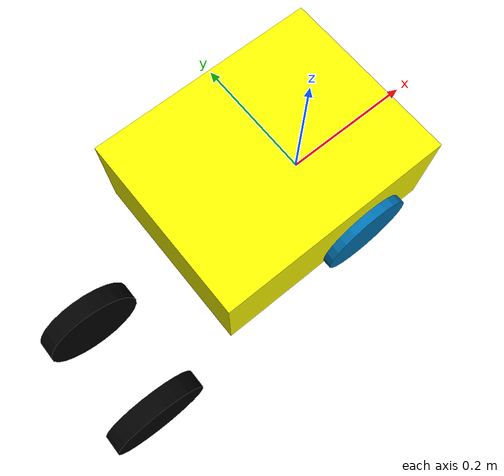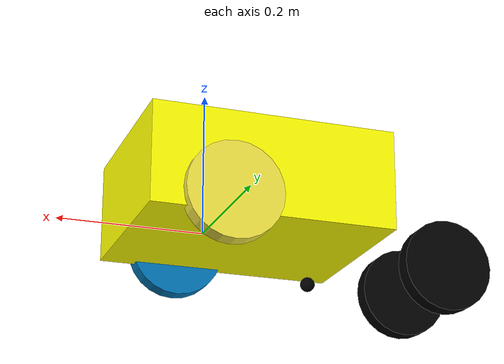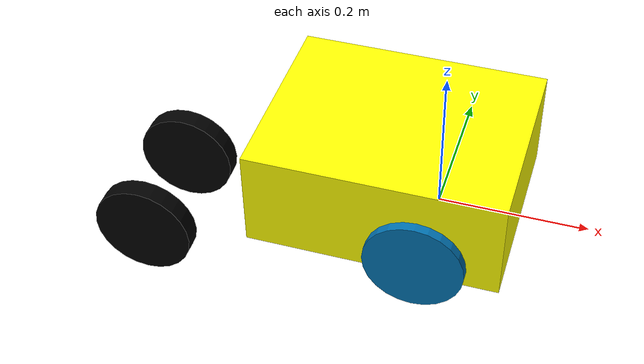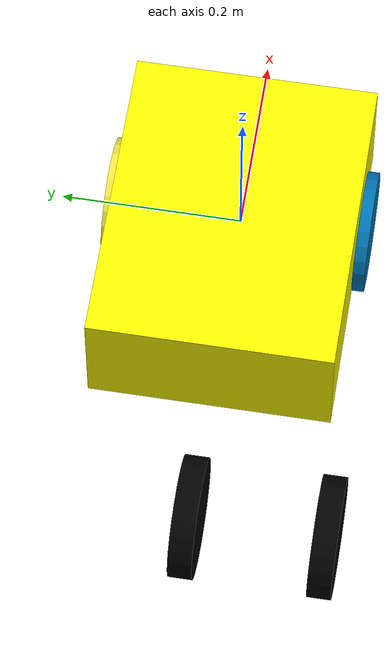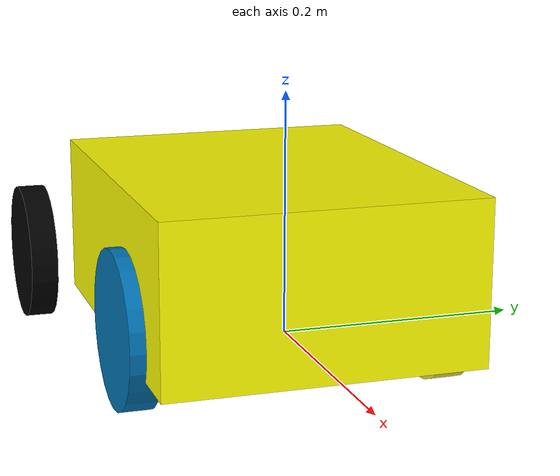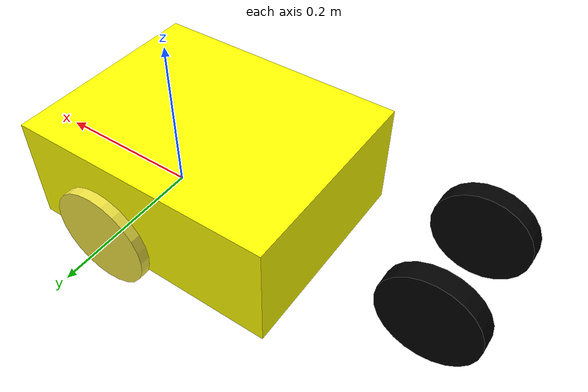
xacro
<?xml version="1.0"?>
<robot xmlns:xacro="http://www.ros.org/wiki/xacro">

    <xacro:include filename="inertial_macros.xacro"/>

    <xacro:property name="chassis_length" value="0.335"/>
    <xacro:property name="chassis_width" value="0.265"/>
    <xacro:property name="chassis_height" value="0.138"/>
    <xacro:property name="chassis_mass" value="1.0"/>
    <xacro:property name="HULL_length" value="0.335"/>
    <xacro:property name="HULL_width" value="0.265"/>
    <xacro:property name="HULL_height" value="0.138"/>
    <xacro:property name="HULL_mass" value="1.0"/>
    <xacro:property name="wheel_radius" value="0.066"/>
    <xacro:property name="wheel_thickness" value="0.026"/>
    <xacro:property name="wheel_mass" value="0.05"/>
    <xacro:property name="wheel_offset_x" value="0.226"/>
    <xacro:property name="wheel_offset_y" value="0.1485"/>
    <xacro:property name="wheel_offset_z" value="0.01"/>
    <xacro:property name="caster_wheel_radius" value="0.01"/>
    <xacro:property name="caster_wheel_mass" value="0.01"/>
    <xacro:property name="caster_wheel_offset_x" value="0.075"/>
    <xacro:property name="caster_wheel_offset_z" value="${wheel_offset_z - wheel_radius + caster_wheel_radius}"/>

    <material name="yellow">
        <color rgba="1 1 0 1" />
    </material>

    <material name="black">
        <color rgba="0 0 0 1"/>
    </material>

    <material name="red">
        <color rgba="1 0 0 1"/>
    </material>

    <!-- BASE LINK -->

    <link name="base_link">

    </link>

    <!-- BASE_FOOTPRINT LINK -->

    <joint name="base_footprint_joint" type="fixed">
        <parent link="base_link"/>
        <child link="base_footprint"/>
        <origin xyz="0 0 0" rpy="0 0 0"/>
    </joint>

    <link name="base_footprint">
    </link>

    <!-- HULL LINK -->

    <joint name="HULL_joint" type="fixed">
        <parent link="base_link"/>
        <child link="HULL"/>
        <origin xyz="${-wheel_offset_x} 0 ${-wheel_offset_z}"/>
    </joint>

    <link name="HULL">
        <visual>
            <origin xyz="${HULL_length/2} 0 ${HULL_height/2}"/>
            <geometry>
                <box size="${HULL_length} ${HULL_width} ${HULL_height}"/>
            </geometry>
            <material name="yellow"/>
        </visual>
        <collision>
            <origin xyz="${HULL_length/2} 0 ${HULL_height/2}"/>
            <geometry>
                <box size="${HULL_length} ${HULL_width} ${HULL_height}"/>
            </geometry>
        </collision>
        <xacro:inertial_box mass="0.5" x="${HULL_length}" y="${HULL_width}" z="${HULL_height}">
            <origin xyz="${HULL_length/2} 0 ${HULL_height/2}" rpy="0 0 0"/>
        </xacro:inertial_box>
    </link>

    <gazebo reference="HULL">
        <material>Gazebo/Yellow</material>
    </gazebo>

    <!-- //create wheel macro// -->

      <xacro:macro name="create_wheel" params="prefix y_offset wheel_radius wheel_width">
    <link name="${prefix}_wheel_link">
      <inertial>
        <origin xyz="0 0 0" />
        <mass value="0.01" />
        <inertia ixx="0.001" ixy="0.0" ixz="0.0" iyy="0.001" iyz="0.0" izz="0.001" />
      </inertial>

      <visual>
        <origin xyz="0 0 0" rpy="0 ${pi/2} ${pi/2}" />
        <geometry>
          <cylinder radius="${wheel_radius}" length="${wheel_width}" />
        </geometry>
      </visual>

      <collision>
        <origin xyz="0 0 0" rpy="0 ${pi/2} ${pi/2}" />
        <geometry>
          <cylinder radius="${wheel_radius}" length="${wheel_width}" />
        </geometry>
      </collision>
    </link>

    <joint name="${prefix}_wheel_joint" type="continuous">
      <origin xyz="0 ${y_offset} 0.015" rpy="0 0 0" />
      <parent link="base_link" />
      <child link="${prefix}_wheel_link" />
      <axis xyz="0 1 0" />
    </joint>
  </xacro:macro>

    <xacro:create_wheel prefix="left" y_offset="${HULL_width / 2}"
      wheel_radius="${wheel_radius}" wheel_width="${wheel_thickness}" />
    <xacro:create_wheel prefix="right" y_offset="${HULL_width / -2}"
      wheel_radius="${wheel_radius}" wheel_width="${wheel_thickness}" />
    <!-- LEFT WHEEL LINK -->

    <!-- LEFT BACK WHEEL LINK -->

    <joint name="left_back_wheel_joint" type="continuous">
        <parent link="HULL"/>
        <child link="left_back_wheel"/>
        <origin xyz="${-HULL_length + 0.2} 0 0" rpy="-${pi/2} 0 0" />
        <axis xyz="0 0 1"/>
    </joint>

    <link name="left_back_wheel">
        <visual>
            <geometry>
                <cylinder radius="${wheel_radius}" length="${wheel_thickness}"/>
            </geometry>
            <material name="black"/>
        </visual>
        <collision>
            <geometry>
                <cylinder radius="${wheel_radius}" length="${wheel_thickness}"/>
            </geometry>
        </collision>
        <inertial>
            <mass value="${wheel_mass}"/>
            <inertia ixx="0.1" ixy="0" ixz="0" iyy="0.1" iyz="0" izz="0.1"/>
            <origin xyz="0 0 0" rpy="0 0 0"/>
        </inertial>
    </link>

    <gazebo reference="left_back_wheel">
        <material>Gazebo/Black</material>
    </gazebo>

    <!-- RIGHT WHEEL LINK -->

    <!-- RIGHT BACK WHEEL LINK -->

    <joint name="right_back_wheel_joint" type="continuous">
        <parent link="HULL"/>
        <child link="right_back_wheel"/>
        <origin xyz="${-HULL_length + 0.2} ${-wheel_offset_y} 0" rpy="${pi/2} 0 0" />
        <axis xyz="0 0 -1"/>
    </joint>

    <link name="right_back_wheel">
        <visual>
            <geometry>
                <cylinder radius="${wheel_radius}" length="${wheel_thickness}"/>
            </geometry>
            <material name="black"/>
        </visual>
        <collision>
            <geometry>
                <sphere radius="${wheel_radius}"/>
            </geometry>
        </collision>
        <xacro:inertial_cylinder mass="${wheel_mass}" length="${wheel_thickness}" radius="${wheel_radius}">
            <origin xyz="0 0 0" rpy="0 0 0"/>
        </xacro:inertial_cylinder>
    </link>

    <gazebo reference="right_back_wheel">
        <material>Gazebo/Black</material>
    </gazebo>

    <!-- CASTER WHEEL LINK -->

    <joint name="caster_wheel_joint" type="fixed">
        <parent link="HULL"/>
        <child link="caster_wheel"/>
        <origin xyz="${caster_wheel_offset_x} 0 ${caster_wheel_offset_z}"/>
    </joint>

    <link name="caster_wheel">
        <visual>
            <geometry>
                <sphere radius="${caster_wheel_radius}"/>
            </geometry>
            <material name="black"/>
        </visual>
        <collision>
            <geometry>
                <sphere radius="${caster_wheel_radius}"/>
            </geometry>
        </collision>
        <xacro:inertial_sphere mass="${caster_wheel_mass}" radius="${caster_wheel_radius}">
            <origin xyz="0 0 0" rpy="0 0 0"/>
        </xacro:inertial_sphere>
    </link>

    <gazebo reference="caster_wheel">
        <material>Gazebo/Black</material>
        <mu1 value="0.001"/>
        <mu2 value="0.001"/>
    </gazebo>

</robot>
